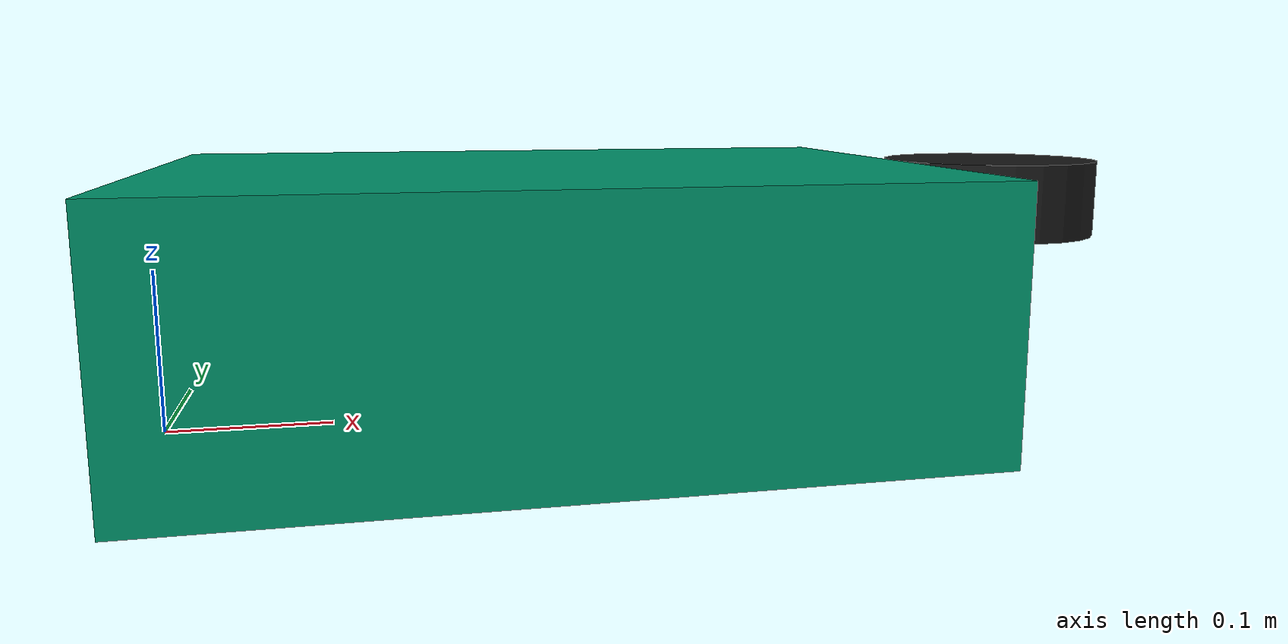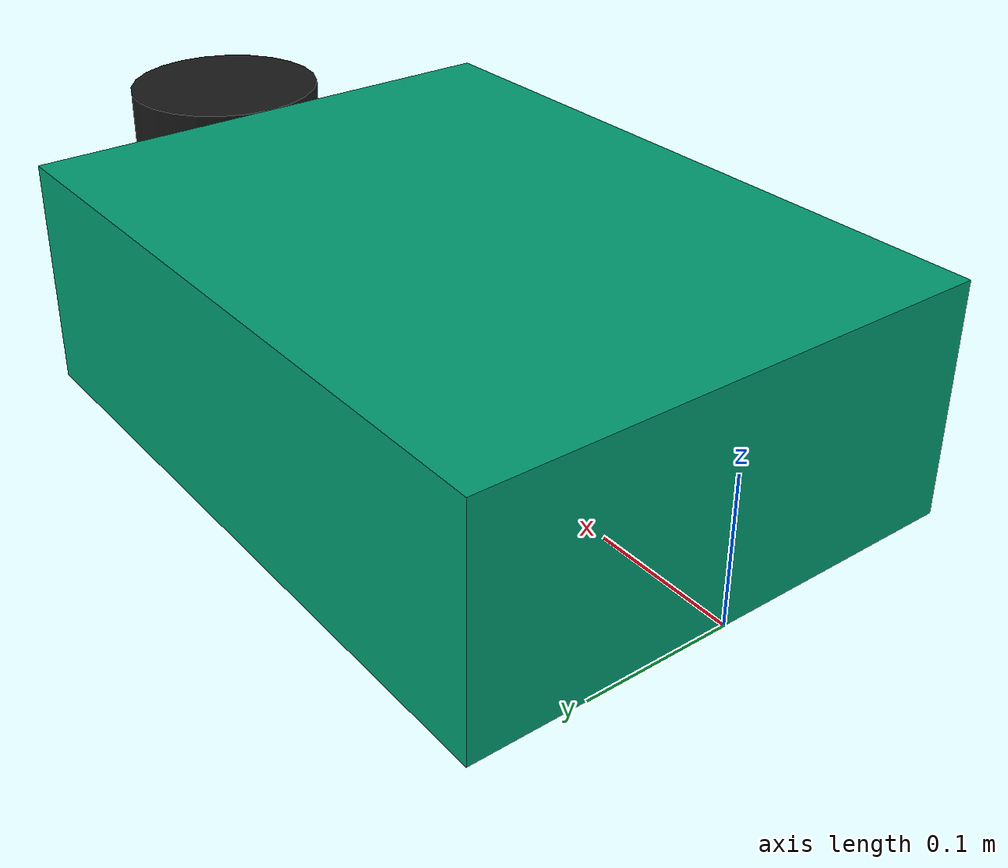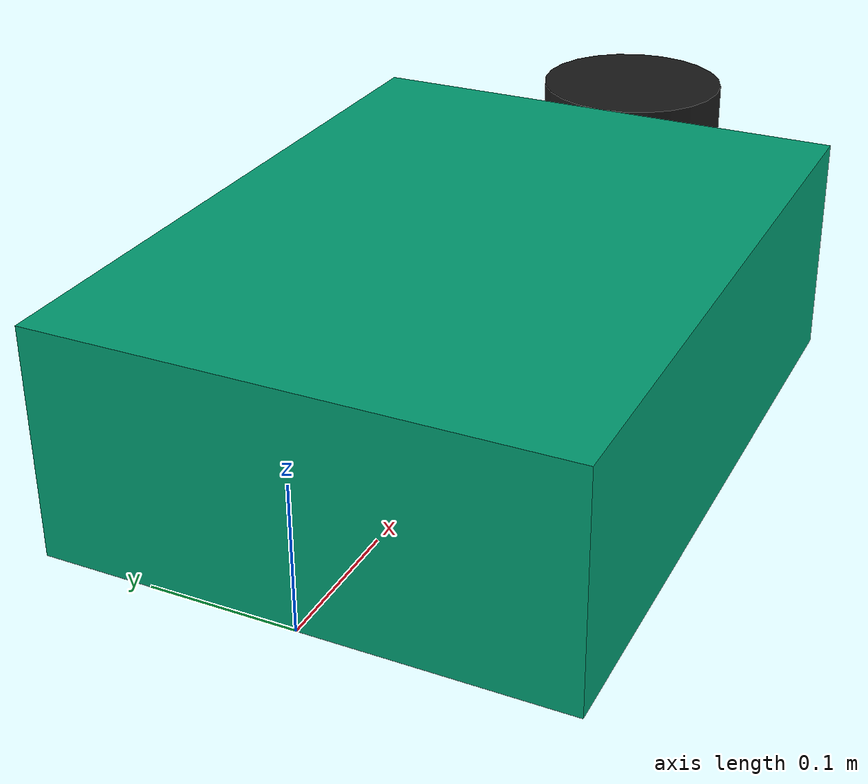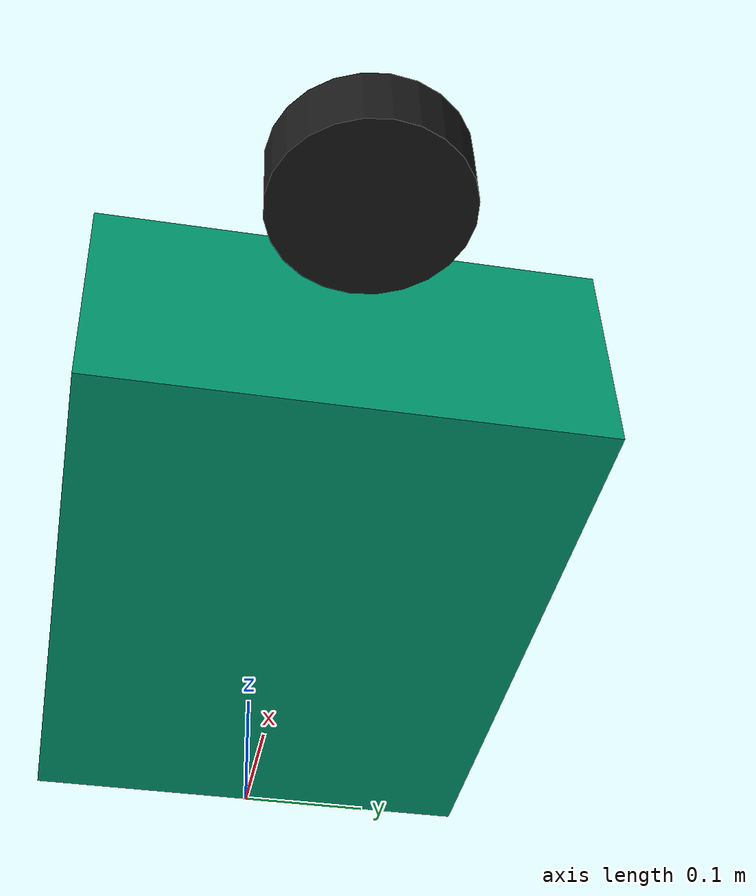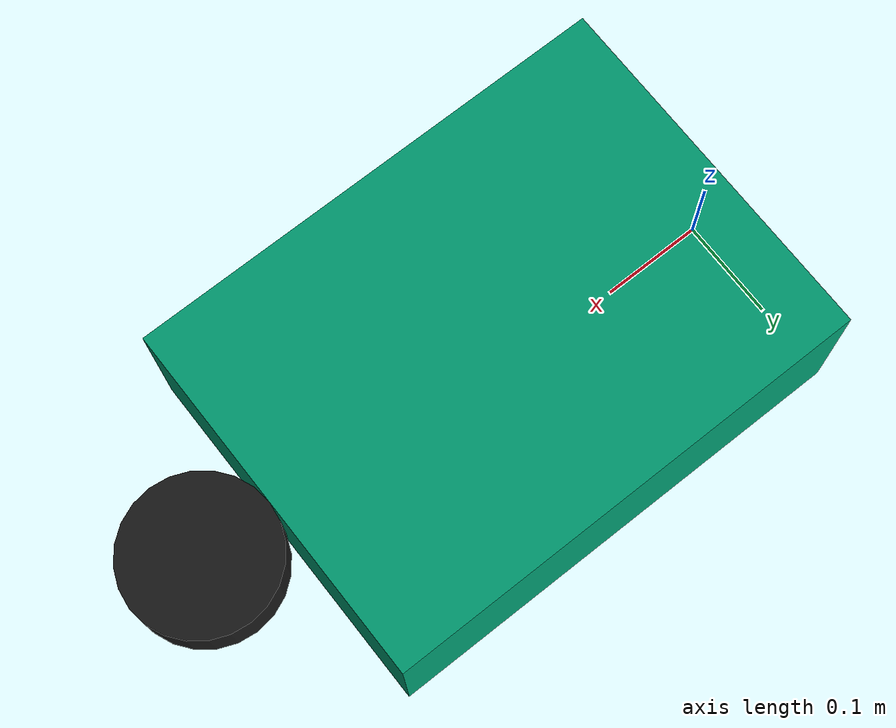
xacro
<?xml version="1.0"?>
<robot xmlns:xacro="http://www.ros.org/wiki/xacro">

  <!-- Chassis -->
  <xacro:property name="body_mass" value="1.58" />
  <xacro:property name="body_width" value="0.355" />
  <xacro:property name="body_length" value="0.160" />
  <xacro:property name="body_depth" value="0.475" />

  <!-- Wheels -->
  <xacro:property name="wheel_radius" value="0.055" />
  <xacro:property name="wheel_thickness" value="0.070" />
  <xacro:property name="wheel_mass" value="0.12" />
  <xacro:property name="steering_mass" value="0.02" />

  <!-- BASE -->

  <link name="base_footprint">
    <origin xyz="0 0 0" rpy="0 0 0" />
  </link>

  <link name="base_link" />

  <joint name="base_joint" type="fixed">
    <parent link="base_footprint" />
    <child link="base_link" />
    <origin xyz="0 0 0" rpy="0 0 0" />
  </joint>

  <!-- CHASSIS -->

  <link name="chassis_link">
    <inertial>
      <origin xyz="0.0374140021041951 -0.000373005187591258 -0.0771282894414029" rpy="0 0 0" />
      <mass value="1.58" />
      <inertia
        ixx="${body_mass/12 * (body_width*body_width + body_length*body_length)}"
        ixy="0" ixz="0"
        iyy="${body_mass/12 * (body_length*body_length + body_depth*body_depth)}"
        iyz="0"
        izz="${body_mass/12 * (body_width*body_width + body_depth*body_depth)}" />
    </inertial>

    <visual>
      <origin xyz="0 0 0" rpy="0 0 0" />
      <geometry>
        <box size="0.475 0.355 0.160" />
      </geometry>
    </visual>

    <collision>
      <origin xyz="0 0 0" rpy="0 0 0" />
      <geometry>
        <box size="0.475 0.355 0.160" />
      </geometry>
    </collision>
  </link>

  <joint name="chassis_joint" type="fixed">
    <parent link="base_link" />
    <child link="chassis_link" />
    <!-- half length, half height -->
    <origin xyz="0.2375 0.0 0.080" rpy="0 0 0" />
  </joint>

  <!-- FRONT LEFT STEERING -->

  <link name="fr_left_steer_link">
    <inertial>
      <origin xyz="-0.0002776492198312 0.0163539773588368 4.97346169803237E-09" rpy="0 0 0" />
      <mass value="${steering_mass}" />
      <inertia
        ixx="${steering_mass/12*(3*wheel_radius*wheel_radius + wheel_thickness*wheel_thickness)}"
        ixy="0" ixz="0"
        iyy="${steering_mass/12*(3*wheel_radius*wheel_radius + wheel_thickness*wheel_thickness)}"
        iyz="0"
        izz="${steering_mass/2 * wheel_radius*wheel_radius}" />
    </inertial>

    <visual>
      <origin xyz="0.0 0.0 0.0" rpy="1.570795 0.0 0.0"/>
      <geometry>
        <cylinder length="0.001" radius="0.01"/>
      </geometry>
      <material name="">
        <color rgba="0.0 0.0 0.0 1.0"/>
      </material>
    </visual>

    <collision>
      <origin xyz="0.0 0.0 0.0" rpy="1.570795 0.0 0.0"/>
      <geometry>
        <cylinder length="0.001" radius="0.01"/>
      </geometry>
    </collision>
  </link>

  <joint name="fr_left_steer_joint" type="revolute">
    <parent link="chassis_link" />
    <child link="fr_left_steer_link" />
    <origin xyz="0.1425 0.1400 -0.025" rpy="0 0 0" />
    <axis xyz="0 0 1" />
    <limit lower="-0.45" upper="0.45" effort="5" velocity="1.0" />
  </joint>

  <link name="fr_left_wheel_link">
    <inertial>
      <origin xyz="-3.5837499634539E-10 4.97346158701006E-09 -0.016356334080185" rpy="0 0 0" />
      <mass value="${wheel_mass}" />
      <inertia
        ixx="${wheel_mass/12*(3*wheel_radius*wheel_radius + wheel_thickness*wheel_thickness)}"
        ixy="0" ixz="0"
        iyy="${wheel_mass/12*(3*wheel_radius*wheel_radius + wheel_thickness*wheel_thickness)}"
        iyz="0"
        izz="${wheel_mass/2 * wheel_radius*wheel_radius}" />
    </inertial>

    <visual>
      <geometry>
        <cylinder radius="${wheel_radius}" length="${wheel_thickness}" />
      </geometry>
      <material name="">
        <color rgba="0.223529411764706 0.223529411764706 0.223529411764706 1" />
      </material>
    </visual>

    <collision>
      <origin xyz="0 0 0" rpy="0 0 0" />
      <geometry>
        <cylinder radius="${wheel_radius}" length="${wheel_thickness}" />
      </geometry>
    </collision>
  </link>

  <joint name="fr_left_wheel_joint" type="continuous">
    <parent link="fr_left_steer_link" />
    <child link="fr_left_wheel_link" />
    <origin xyz="0 0 0" rpy="1.5708 0 0" />
    <axis xyz="0 0 -1" />
    <dynamics friction="0.8" damping="0.5" />
    <limit lower="-3.14159" upper="3.14159" effort="200" velocity="-1" />
  </joint>

  <!-- FRONT RIGHT STEERING -->

  <link name="fr_right_steer_link">
    <inertial>
      <origin xyz="0.000274981985673328 -0.0163540222836661 -3.24802407192237E-11" rpy="0 0 0" />
      <mass value="${steering_mass}" />
      <inertia
        ixx="${steering_mass/12*(3*wheel_radius*wheel_radius + wheel_thickness*wheel_thickness)}"
        ixy="0" ixz="0"
        iyy="${steering_mass/12*(3*wheel_radius*wheel_radius + wheel_thickness*wheel_thickness)}"
        iyz="0"
        izz="${steering_mass/2 * wheel_radius*wheel_radius}" />
    </inertial>

    <visual>
      <origin xyz="0.0 0.0 0.0" rpy="1.570795 0.0 0.0"/>
      <geometry>
        <cylinder length="0.001" radius="0.01"/>
      </geometry>
      <material name=" ">
        <color rgba="0.0 0.0 0.0 1.0"/>
      </material>
    </visual>

    <collision>
      <origin xyz="0.0 0.0 0.0" rpy="1.570795 0.0 0.0"/>
      <geometry>
        <cylinder length="0.001" radius="0.01"/>
      </geometry>
    </collision>

  </link>

  <joint name="fr_right_steer_joint" type="revolute">
    <parent link="chassis_link" />
    <child link="fr_right_steer_link" />
    <origin xyz="0.1425 -0.1400 -0.025" rpy="0 0 0" />
    <axis xyz="0 0 1" />
    <limit lower="-0.45" upper="0.45" effort="5" velocity="1.0" />
  </joint>

  <link name="fr_right_wheel_link">
        <inertial>
            <origin xyz="0.00027498198567355 3.24801296969213E-11 -0.0163540222836661" rpy="0 0 0" />
            <mass value="${wheel_mass}" />
            <inertia
                ixx="${wheel_mass/12*(3*wheel_radius*wheel_radius + wheel_thickness*wheel_thickness)}"
                ixy="0" ixz="0"
                iyy="${wheel_mass/12*(3*wheel_radius*wheel_radius + wheel_thickness*wheel_thickness)}"
                iyz="0" izz="${wheel_mass/2 * wheel_radius*wheel_radius}" />
        </inertial>
        <visual>
            <geometry>
                <cylinder radius="${wheel_radius}" length="${wheel_thickness}" />
            </geometry>
            <material name="">
                <color rgba="0.223529411764706 0.223529411764706 0.223529411764706 1" />
            </material>
        </visual>
        <collision>
            <origin xyz="0 0 0" rpy="0 0 0" />
            <geometry>
                <cylinder radius="${wheel_radius}" length="${wheel_thickness}" />
            </geometry>
        </collision>
  </link>

  <joint name="fr_right_wheel_joint" type="continuous">
    <parent link="fr_right_steer_link" />
    <child link="fr_right_wheel_link" />
    <origin xyz="0 0 0" rpy="-1.5708 0 0" />
    <axis xyz="0 0 1" />
    <dynamics friction="0.8" damping="0.5" />
    <limit lower="-3.14159" upper="3.14159" effort="200" velocity="-1" />
  </joint>

  <!-- REAR WHEELS -->

  <!-- REAR LEFT WHEEL -->
<link name="re_left_wheel_link">
    <inertial>
        <origin xyz="1.245E-09 1.7252E-06 -0.010284" rpy="0 0 0" />
        <mass value="${wheel_mass}" />
        <inertia
            ixx="${wheel_mass/12*(3*wheel_radius*wheel_radius + wheel_thickness*wheel_thickness)}"
            ixy="0" ixz="0"
            iyy="${wheel_mass/12*(3*wheel_radius*wheel_radius + wheel_thickness*wheel_thickness)}"
            iyz="0"
            izz="${wheel_mass/2 * wheel_radius*wheel_radius}" />
    </inertial>

    <visual>
        <origin xyz="0 0 0" rpy="0 0 0" />
        <geometry>
            <cylinder radius="${wheel_radius}" length="${wheel_thickness}" />
        </geometry>
        <material name="">
            <color rgba="0.37647 0.37647 0.37647 1" />
        </material>
    </visual>

    <collision>
        <origin xyz="0 0 0" rpy="0 0 0" />
        <geometry>
            <cylinder radius="${wheel_radius}" length="${wheel_thickness}" />
        </geometry>
    </collision>
</link>

<joint name="re_left_wheel_joint" type="continuous">
    <parent link="chassis_link" />
    <child link="re_left_wheel_link" />
    <origin xyz="-0.1425 0.1400 -0.025" rpy="1.5708 0 0" />
    <axis xyz="0 0 -1" />
    <dynamics friction="0.8" damping="0.5" />
    <limit lower="-3.14159" upper="3.14159" effort="70" velocity="-1" />
</joint>

<!-- REAR RIGHT WHEEL -->
<link name="re_right_wheel_link">
    <inertial>
        <origin xyz="0 0 0" rpy="0 0 0" />
        <mass value="${wheel_mass}" />
        <inertia
            ixx="${wheel_mass/12*(3*wheel_radius*wheel_radius + wheel_thickness*wheel_thickness)}"
            ixy="0" ixz="0"
            iyy="${wheel_mass/12*(3*wheel_radius*wheel_radius + wheel_thickness*wheel_thickness)}"
            iyz="0"
            izz="${wheel_mass/2 * wheel_radius*wheel_radius}" />
    </inertial>

    <visual>
        <origin xyz="0 0 0" rpy="0 0 0" />
        <geometry>
            <cylinder radius="${wheel_radius}" length="${wheel_thickness}" />
        </geometry>
        <material name="">
            <color rgba="0.37647 0.37647 0.37647 1" />
        </material>
    </visual>

    <collision>
        <origin xyz="0 0 0" rpy="0 0 0" />
        <geometry>
            <cylinder radius="${wheel_radius}" length="${wheel_thickness}" />
        </geometry>
    </collision>
</link>

<joint name="re_right_wheel_joint" type="continuous">
    <parent link="chassis_link" />
    <child link="re_right_wheel_link" />
    <origin xyz="-0.1425 -0.1400 -0.025" rpy="-1.5708 0 0" />
    <axis xyz="0 0 1" />
    <dynamics friction="0.8" damping="0.5" />
    <limit lower="-3.14159" upper="3.14159" effort="70" velocity="-1" />
</joint>

  <!-- LiDAR -->

  <link name="laser_link">

    <inertial>
        <origin xyz="0 0 0" rpy="0 0 0"/>
        <mass value="0.2"/>
        <inertia ixx="0.0001" ixy="0.0" ixz="0.0"
                    iyy="0.0001" iyz="0.0"
                    izz="0.0001"/>
    </inertial>
    <visual>
      <geometry>
        <cylinder radius="0.07" length="0.05"/>
      </geometry>
      <material name="">
                <color rgba="0.1 0.1 0.1 1"/>
      </material>
    </visual>
     <collision>
        <origin xyz="0 0 0" rpy="0 0 0"/>
        <geometry>
            <cylinder radius="0.07" length="0.05"/>
        </geometry>
    </collision>
  </link>

  <joint name="laser_joint" type="fixed">
    <parent link="chassis_link"/>
    <child link="laser_link"/>
    <origin xyz="0.3075 0.0 0.055" rpy="0 0 0"/>
  </joint>

</robot>
